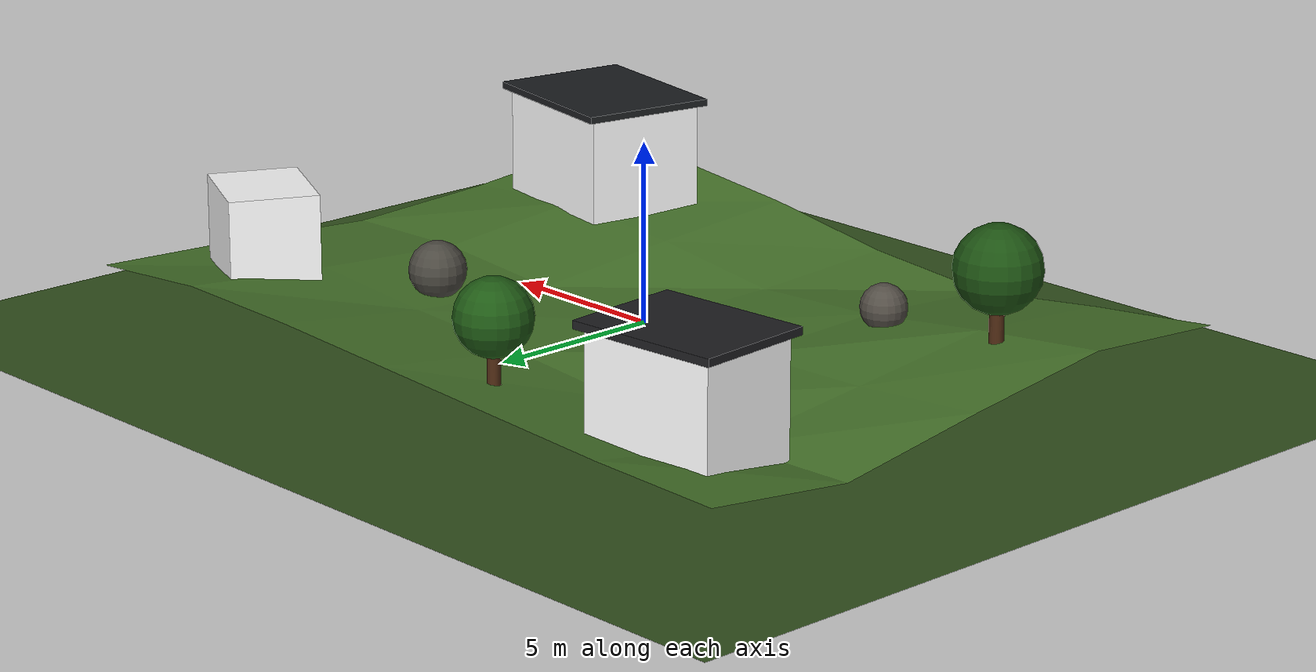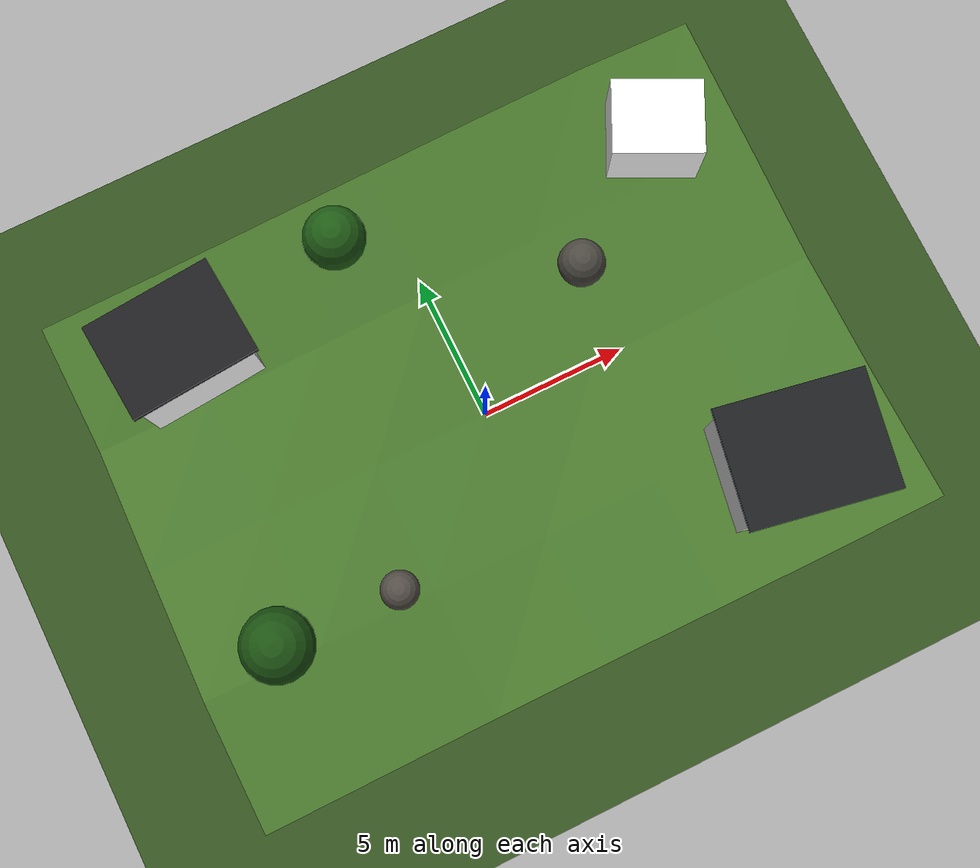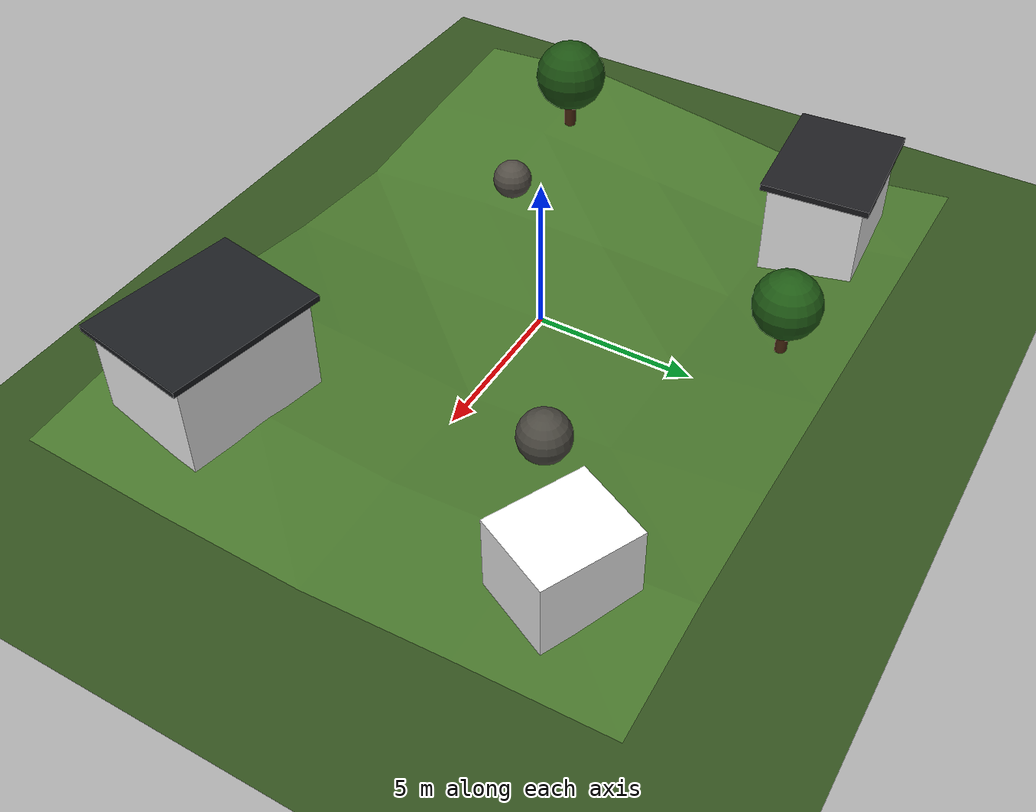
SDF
<?xml version="1.0"?>
<!-- Download-free rolling terrain with response-textured buildings and sun. -->
<sdf version="1.9">
  <world name="turtlebot3_hills">
    <physics name="default" type="ignored">
      <max_step_size>0.004</max_step_size>
      <real_time_factor>1.0</real_time_factor>
      <real_time_update_rate>250</real_time_update_rate>
    </physics>
    <plugin filename="gz-sim-physics-system" name="gz::sim::systems::Physics"/>
    <plugin filename="gz-sim-scene-broadcaster-system" name="gz::sim::systems::SceneBroadcaster"/>
    <plugin filename="gz-sim-user-commands-system" name="gz::sim::systems::UserCommands"/>
    <plugin filename="gz-sim-imu-system" name="gz::sim::systems::Imu"/>
    <plugin filename="gz-sim-altimeter-system" name="gz::sim::systems::Altimeter"/>

    <scene>
      <ambient>0.42 0.44 0.48 1</ambient>
      <background>0.43 0.68 0.9 1</background>
      <shadows>true</shadows>
      <grid>false</grid>
    </scene>
    <light type="directional" name="sun">
      <cast_shadows>true</cast_shadows>
      <pose>0 0 15 0 0 0</pose>
      <diffuse>1 0.95 0.82 1</diffuse>
      <specular>0.35 0.35 0.3 1</specular>
      <direction>-0.45 0.18 -1</direction>
    </light>

    <model name="rolling_terrain">
      <static>true</static>
      <link name="link">
        <collision name="collision"><geometry><mesh><uri>../media/meshes/hilly_terrain.obj</uri></mesh></geometry></collision>
        <visual name="visual">
          <laser_retro>0.34</laser_retro>
          <geometry><mesh><uri>../media/meshes/hilly_terrain.obj</uri></mesh></geometry>
          <material><ambient>0.16 0.28 0.1 1</ambient><diffuse>0.28 0.46 0.17 1</diffuse><specular>0.02 0.02 0.02 1</specular></material>
        </visual>
      </link>
    </model>
    <model name="catch_ground">
      <static>true</static><pose>0 0 -1 0 0 0</pose>
      <link name="link"><collision name="collision"><geometry><plane><normal>0 0 1</normal><size>80 80</size></plane></geometry></collision>
        <visual name="visual"><laser_retro>0.3</laser_retro><geometry><plane><normal>0 0 1</normal><size>80 80</size></plane></geometry><material><diffuse>0.2 0.32 0.12 1</diffuse></material></visual>
      </link>
    </model>

    <!-- The buildings' visible albedo has an aligned .ouster.png companion,
         so cyan/magenta/yellow/white paint and the underlying brick separate
         cleanly in REFLECTIVITY and NEAR_IR. -->
    <model name="brick_pump_house">
      <static>true</static><pose>-8 6 1.35 0 0 0.08</pose>
      <link name="link">
        <collision name="collision"><geometry><box><size>4 3 3.2</size></box></geometry></collision>
        <visual name="visual"><geometry><box><size>4 3 3.2</size></box></geometry>
          <material><ambient>1 1 1 1</ambient><diffuse>1 1 1 1</diffuse><pbr><metal><albedo_map>../media/materials/textures/brick_graffiti.png</albedo_map><metalness>0</metalness><roughness>0.86</roughness></metal></pbr></material>
        </visual>
        <visual name="roof"><pose>0 0 1.72 0 0 0</pose><laser_retro>0.18</laser_retro><geometry><box><size>4.4 3.4 0.22</size></box></geometry><material><diffuse>0.12 0.12 0.13 1</diffuse><specular>0.22 0.22 0.22 1</specular></material></visual>
      </link>
    </model>
    <model name="brick_service_building">
      <static>true</static><pose>8 -5.8 2.2 0 0 -0.18</pose>
      <link name="link">
        <collision name="collision"><geometry><box><size>4.5 3.5 3</size></box></geometry></collision>
        <visual name="visual"><geometry><box><size>4.5 3.5 3</size></box></geometry>
          <material><ambient>1 1 1 1</ambient><diffuse>1 1 1 1</diffuse><pbr><metal><albedo_map>../media/materials/textures/brick_graffiti.png</albedo_map><metalness>0</metalness><roughness>0.86</roughness></metal></pbr></material>
        </visual>
        <visual name="roof"><pose>0 0 1.62 0 0 0</pose><laser_retro>0.18</laser_retro><geometry><box><size>4.9 3.9 0.2</size></box></geometry><material><diffuse>0.11 0.12 0.13 1</diffuse><specular>0.22 0.22 0.22 1</specular></material></visual>
      </link>
    </model>
    <model name="brick_shed">
      <static>true</static><pose>9 5.8 1.9 0 0 -0.45</pose>
      <link name="link">
        <collision name="collision"><geometry><box><size>3 2.5 2.4</size></box></geometry></collision>
        <visual name="visual"><geometry><box><size>3 2.5 2.4</size></box></geometry>
          <material><ambient>1 1 1 1</ambient><diffuse>1 1 1 1</diffuse><pbr><metal><albedo_map>../media/materials/textures/brick_graffiti.png</albedo_map><metalness>0</metalness><roughness>0.86</roughness></metal></pbr></material>
        </visual>
      </link>
    </model>

    <model name="boulder_west">
      <static>true</static><pose>-5 -4 0.75 0 0 0</pose>
      <link name="link"><collision name="collision"><geometry><sphere><radius>0.65</radius></sphere></geometry></collision>
        <visual name="visual"><laser_retro>0.27</laser_retro><geometry><sphere><radius>0.65</radius></sphere></geometry><material><diffuse>0.32 0.3 0.27 1</diffuse></material></visual></link>
    </model>
    <model name="boulder_east">
      <static>true</static><pose>5 3 1.0 0 0 0</pose>
      <link name="link"><collision name="collision"><geometry><sphere><radius>0.8</radius></sphere></geometry></collision>
        <visual name="visual"><laser_retro>0.25</laser_retro><geometry><sphere><radius>0.8</radius></sphere></geometry><material><diffuse>0.29 0.28 0.25 1</diffuse></material></visual></link>
    </model>
    <model name="tree_north">
      <static>true</static><pose>-2 7 0.8 0 0 0</pose>
      <link name="link">
        <collision name="trunk_c"><geometry><cylinder><radius>0.18</radius><length>1.8</length></cylinder></geometry></collision>
        <visual name="trunk"><laser_retro>0.22</laser_retro><geometry><cylinder><radius>0.18</radius><length>1.8</length></cylinder></geometry><material><diffuse>0.3 0.16 0.07 1</diffuse></material></visual>
        <visual name="crown"><pose>0 0 1.35 0 0 0</pose><laser_retro>0.36</laser_retro><geometry><sphere><radius>1.05</radius></sphere></geometry><material><diffuse>0.12 0.35 0.08 1</diffuse></material></visual>
      </link>
    </model>
    <model name="tree_south">
      <static>true</static><pose>-9 -4 1.2 0 0 0</pose>
      <link name="link">
        <collision name="trunk_c"><geometry><cylinder><radius>0.2</radius><length>2</length></cylinder></geometry></collision>
        <visual name="trunk"><laser_retro>0.22</laser_retro><geometry><cylinder><radius>0.2</radius><length>2</length></cylinder></geometry><material><diffuse>0.3 0.16 0.07 1</diffuse></material></visual>
        <visual name="crown"><pose>0 0 1.5 0 0 0</pose><laser_retro>0.36</laser_retro><geometry><sphere><radius>1.2</radius></sphere></geometry><material><diffuse>0.11 0.32 0.07 1</diffuse></material></visual>
      </link>
    </model>
  </world>
</sdf>
